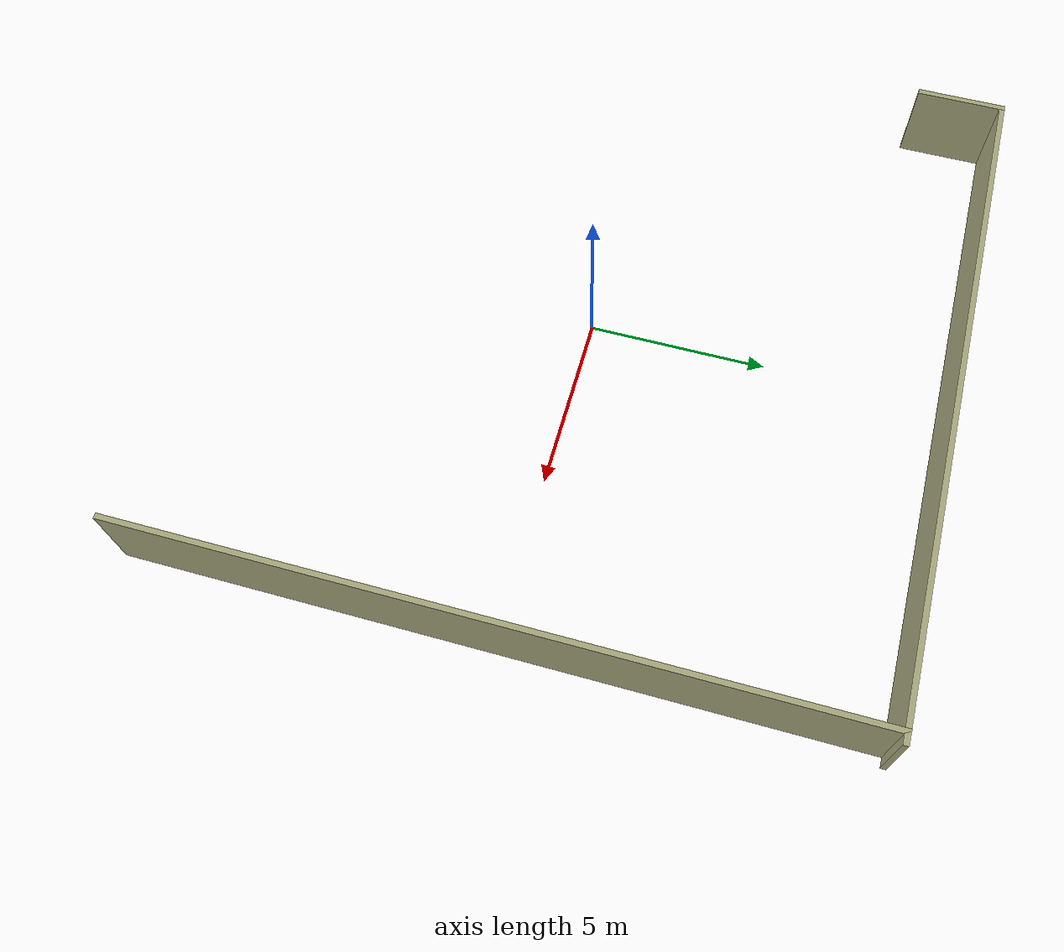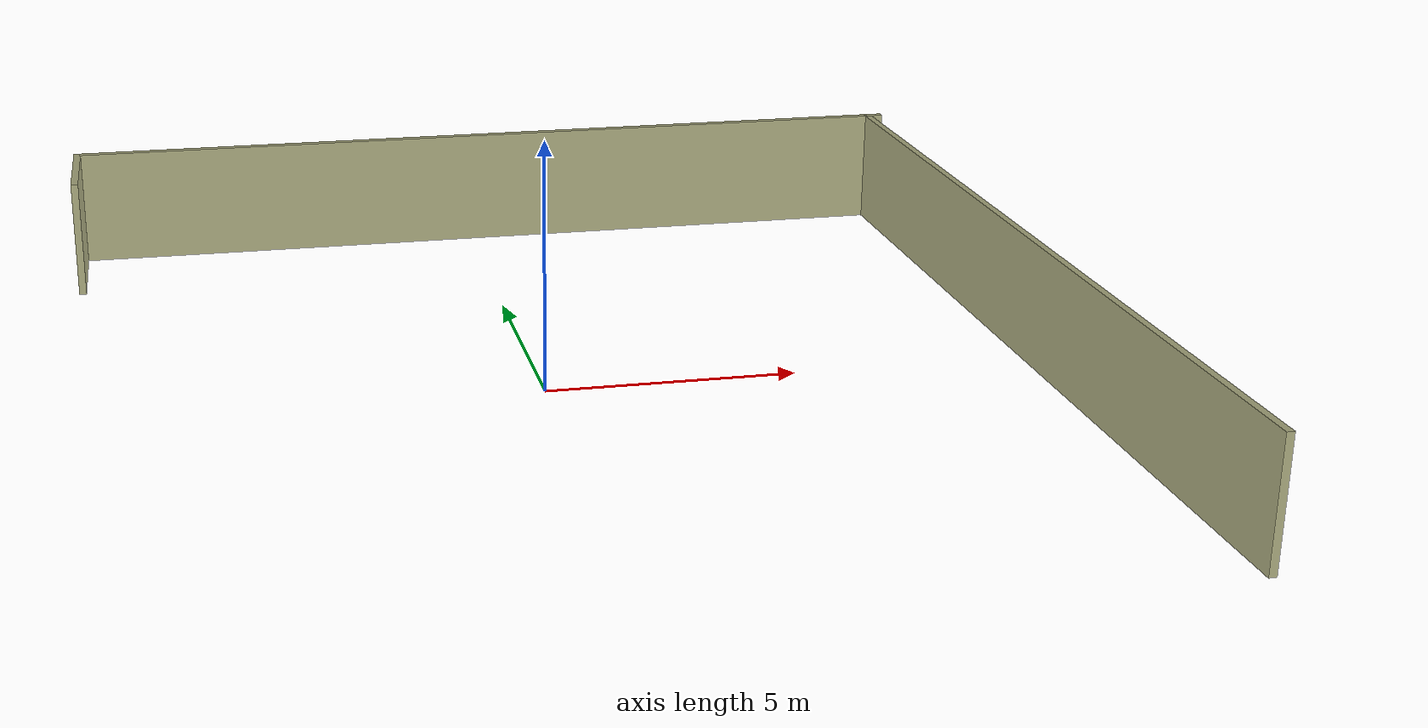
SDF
<?xml version='1.0'?>
<sdf version='1.7'>
  <model name='IntelAriacWall'>
    <pose>0.579306 0.061913 0 0 -0 0</pose>
    <link name='BoundingWall_1'>
      <collision name='BoundingWall_1_Collision'>
        <geometry>
          <box>
            <size>20 0.15 2.5</size>
          </box>
        </geometry>
        <pose>0 0 1.25 0 -0 0</pose>
      </collision>
      <visual name='BoundingWall_1_Visual'>
        <pose>0 0 1.25 0 -0 0</pose>
        <geometry>
          <box>
            <size>20 0.15 2.5</size>
          </box>
        </geometry>
        <material>
          <pbr>
            <metal>
              <albedo_map>ceiling_tiled.png</albedo_map>
            </metal>
          </pbr>
          <ambient>0.666667 0.666667 0.498039 1</ambient>
        </material>
        <meta>
          <layer>0</layer>
        </meta>
      </visual>
      <pose>9.22505 -0 0 0 -0 -1.5708</pose>
    </link>
    <link name='BoundingWall_4'>
      <collision name='BoundingWall_4_Collision'>
        <geometry>
          <box>
            <size>19 0.15 2.5</size>
          </box>
        </geometry>
        <pose>0 0 1.25 0 -0 0</pose>
      </collision>
      <visual name='BoundingWall_4_Visual'>
        <pose>0 0 1.25 0 -0 0</pose>
        <geometry>
          <box>
            <size>19 0.15 2.5</size>
          </box>
        </geometry>
        <material>
          <pbr>
            <metal>
              <albedo_map>ceiling_tiled.png</albedo_map>
            </metal>
          </pbr>
          <ambient>0.666667 0.666667 0.498039 1</ambient>
        </material>
        <meta>
          <layer>0</layer>
        </meta>
      </visual>
      <pose>0.061877 9.91866 0 0 -0 3.14159</pose>
    </link>
    <link name='BoundingWall_5'>
      <collision name='BoundingWall_5_Collision'>
        <geometry>
          <box>
            <size>2.51365 0.15 2.5</size>
          </box>
        </geometry>
        <pose>0 0 1.25 0 -0 0</pose>
      </collision>
      <visual name='BoundingWall_5_Visual'>
        <pose>0 0 1.25 0 -0 0</pose>
        <geometry>
          <box>
            <size>2.51365 0.15 2.5</size>
          </box>
        </geometry>
        <material>
          <pbr>
            <metal>
              <albedo_map>ceiling_tiled.png</albedo_map>
            </metal>
          </pbr>
          <ambient>0.666667 0.666667 0.498039 1</ambient>
        </material>
        <meta>
          <layer>0</layer>
        </meta>
      </visual>
      <pose>-9.48688 8.73683 0 0 -0 -1.5708</pose>
    </link>
    <static>1</static>
  </model>
</sdf>
